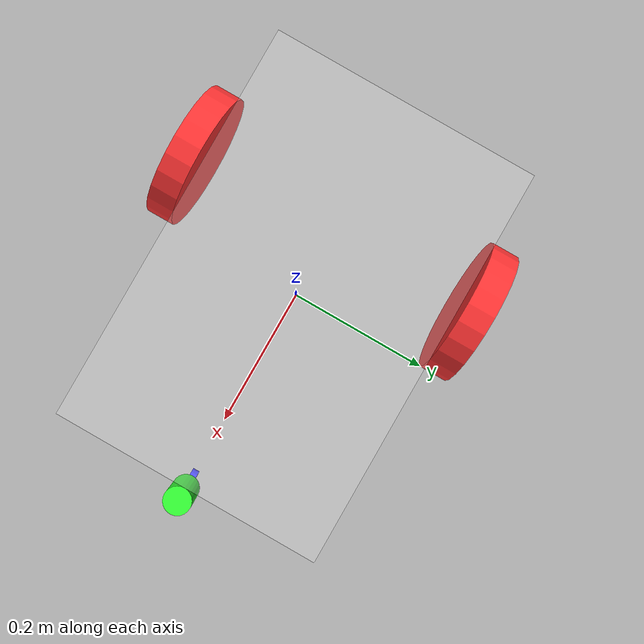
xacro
<robot name = "diff_drive" xmlns:xacro = "http://wiki.ros.org/xacro">

    <xacro:macro name = "make_base_link"
                 params = "name xyz rpy mass width height depth rgba">

        <link name = "${name}">
            <inertial>
                <origin xyz = "${xyz}" rpy = "${rpy}"/>
                <mass value="${mass}"/>
                <inertia ixx="${(1/12) * mass * (height * height * depth *depth)}" ixy="0.0" ixz="0.0"
                         iyy="${(1/12) * mass * (width * width * depth *depth)}" iyz="0.0"
                         izz="${(1/12) * mass * (width * width * height * height)}"/>
            </inertial>
            <visual>
                <origin xyz = "${xyz}" rpy = "${rpy}"/>
                <geometry>
                    <box size="${width} ${depth} ${height}"/>
                </geometry>
                <material name = "${name}_material">
                    <color rgba = "${rgba}"/>
                </material>
            </visual>
            <collision>
                <origin xyz = "${xyz}" rpy = "${rpy}"/>
                <geometry>
                    <box size="${width} ${depth} ${height}"/>
                </geometry>
            </collision>
        </link>

        <gazebo reference = "${name}">
            <visual>
                <material>
                    <ambient>${rgba}</ambient>
                </material>
            </visual>
        </gazebo>

    </xacro:macro>

    <xacro:macro name = "make_cylinder_link"
                 params = "name xyz rpy mass radius length rgba">

        <link name = "${name}">
            <inertial>
                <origin xyz = "${xyz}" rpy = "${rpy}"/>
                <mass value="${mass}"/>
                <inertia ixx="${(1/12) * mass * (3 * radius * radius + length * length)}" ixy="0.0" ixz="0.0"
                         iyy="${(1/12) * mass * (3 * radius * radius + length * length)}" iyz="0.0"
                         izz="${(1/2) * mass * radius * radius}"/>
            </inertial>
            <visual>
                <origin xyz = "${xyz}" rpy = "${rpy}"/>
                <geometry>
                    <cylinder radius="${radius}" length="${length}"/>
                </geometry>
                <material name = "${name}_material">
                    <color rgba = "${rgba}"/>
                </material>
            </visual>
            <collision>
                <origin xyz = "${xyz}" rpy = "${rpy}"/>
                <geometry>
                    <cylinder radius="${radius}" length="${length}"/>
                </geometry>
            </collision>
        </link>

        <gazebo reference = "${name}">
            <visual>
                <material>
                    <ambient>${rgba}</ambient>
                </material>
            </visual>
            <mu1 value = "1"/>
            <mu2 value = "1"/>
            <kp value="1000000"/>
            <kd value= "100"/>
        </gazebo>

    </xacro:macro>

    <xacro:macro name = "make_continuous_joint"
                 params = "name xyz rpy parent child axis damping friction">
        <joint name = "${name}" type = "continuous">
            <origin xyz = "${xyz}" rpy = "${rpy}"/>
            <parent link="${parent}"/>
            <child link="${child}"/>
            <axis xyz="${axis}"/>
            <dynamics damping = "${damping}" friction = "${friction}"/>
        </joint>
    </xacro:macro>

    <xacro:make_base_link name ="base_link"
                          xyz = "0 0 0"
                          rpy = "0 0 0"
                          mass = "1"
                          width = "0.6"
                          height = "0.1"
                          depth = "0.4"
                          rgba = "1.0 1.0 1.0 0.2"/>

    <xacro:make_cylinder_link name = "left_wheel"
                           xyz = "0 0 0"
                           rpy = "0 0 0"
                           mass = "0.05"
                           radius = "0.1"
                           length = "0.04"
                           rgba = "1 0.2 0.2 1.0"/>

    <xacro:make_continuous_joint name = "left_wheel_joint"
                                 xyz = "-0.1 0.22 0"
                                 rpy = "0 ${-pi/2} ${-pi/2}"
                                 parent = "base_link"
                                 child = "left_wheel"
                                 axis = "0 0 1"
                                 damping = "0"
                                 friction = "0"/>

    <xacro:make_cylinder_link name = "right_wheel"
                           xyz = "0 0 0"
                           rpy = "0 0 0"
                           mass = "0.05"
                           radius = "0.1"
                           length = "0.04"
                           rgba = "1 0.2 0.2 1.0"/>

    <xacro:make_continuous_joint name = "right_wheel_joint"
                                 xyz = "-0.1 -0.22 0"
                                 rpy = "0.0 ${-pi/2} ${-pi/2}"
                                 parent = "base_link"
                                 child = "right_wheel"
                                 axis = "0 0 1"
                                 damping = "0"
                                 friction = "0"/>

    <xacro:make_cylinder_link name = "caster_support"
                                 xyz = "0 0 0"
                                 rpy = "0 0 0"
                                 mass = "0.1"
                                 radius = "0.02"
                                 length = "0.1"
                                 rgba = "0.2 1.0 0.2 1.0"/>

    <xacro:make_continuous_joint name = "caster_support_joint"
                                 xyz = "0.32 0 0"
                                 rpy = "0 0 0"
                                 parent = "base_link"
                                 child = "caster_support"
                                 axis = "0 0 1"
                                 damping = "0"
                                 friction = "0"/>

    <xacro:make_cylinder_link name = "caster_wheel"
                                 xyz = "0 0 0"
                                 rpy = "0 0 0"
                                 mass = "0.02"
                                 radius = "0.025"
                                 length = "0.01"
                                 rgba = "0.2 0.2 1.0 1.0"/>

    <xacro:make_continuous_joint name = "caster_wheel_joint"
                                 xyz = "0 0 -0.075"
                                 rpy = "-1.5708 0 0"
                                 parent = "caster_support"
                                 child = "caster_wheel"
                                 axis = "0 0 1"
                                 damping = "0"
                                 friction = "0"/>

    <gazebo>
        <plugin name = "differential_drive_controller" filename = "libgazebo_ros_diff_drive.so">
            <leftJoint>left_wheel_joint</leftJoint>
            <rightJoint>right_wheel_joint</rightJoint>
            <robotBaseFrame>base_link</robotBaseFrame>
            <wheelSeparation>0.25</wheelSeparation>
            <wheelDiameter>0.07</wheelDiameter>
            <publishWheelJointState>true</publishWheelJointState>
        </plugin>
    </gazebo>

</robot>
